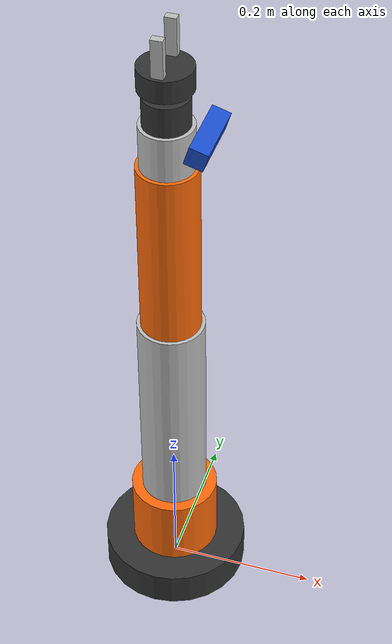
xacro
<?xml version="1.0"?>
<robot name="manipulator" xmlns:xacro="http://www.ros.org/wiki/xacro">

  <!-- Include sub-xacros relative to this file -->
  <xacro:include filename="common_macros.xacro" />
  <xacro:include filename="camera.xacro" />
  <xacro:include filename="gripper.xacro" />
  <xacro:include filename="ros2_control.xacro" />

  <!-- World / Base Footprint -->
  <link name="world"/>

  <joint name="world_to_base_joint" type="fixed">
    <parent link="world"/>
    <child link="base_link"/>
    <origin xyz="0 0 0" rpy="0 0 0"/>
  </joint>

  <!-- Base Link -->
  <link name="base_link">
    <visual>
      <origin xyz="0 0 0.025" rpy="0 0 0"/>
      <geometry>
        <cylinder radius="0.1" length="0.05"/>
      </geometry>
      <material name="dark_grey"/>
    </visual>
    <collision>
      <origin xyz="0 0 0.025" rpy="0 0 0"/>
      <geometry>
        <cylinder radius="0.1" length="0.05"/>
      </geometry>
    </collision>
    <xacro:cylinder_inertia m="3.0" r="0.1" h="0.05"/>
  </link>

  <!-- Joint 1: Base Yaw Rotation -->
  <joint name="joint_1" type="revolute">
    <parent link="base_link"/>
    <child link="link_1"/>
    <origin xyz="0 0 0.05" rpy="0 0 0"/>
    <axis xyz="0 0 1"/>
    <limit lower="${-pi}" upper="${pi}" effort="50.0" velocity="2.0"/>
    <dynamics damping="1.0" friction="0.5"/>
  </joint>

  <!-- Link 1 -->
  <link name="link_1">
    <visual>
      <origin xyz="0 0 0.05" rpy="0 0 0"/>
      <geometry>
        <cylinder radius="0.06" length="0.1"/>
      </geometry>
      <material name="orange"/>
    </visual>
    <collision>
      <origin xyz="0 0 0.05" rpy="0 0 0"/>
      <geometry>
        <cylinder radius="0.06" length="0.1"/>
      </geometry>
    </collision>
    <xacro:cylinder_inertia m="2.0" r="0.06" h="0.1"/>
  </link>

  <!-- Joint 2: Shoulder Pitch -->
  <joint name="joint_2" type="revolute">
    <parent link="link_1"/>
    <child link="link_2"/>
    <origin xyz="0 0 0.1" rpy="0 0 0"/>
    <axis xyz="0 1 0"/>
    <limit lower="${-pi/2}" upper="${pi/2}" effort="80.0" velocity="1.5"/>
    <dynamics damping="1.5" friction="0.5"/>
  </joint>

  <!-- Link 2: Upper Arm -->
  <link name="link_2">
    <visual>
      <origin xyz="0 0 0.15" rpy="0 0 0"/>
      <geometry>
        <cylinder radius="0.045" length="0.3"/>
      </geometry>
      <material name="silver"/>
    </visual>
    <collision>
      <origin xyz="0 0 0.15" rpy="0 0 0"/>
      <geometry>
        <cylinder radius="0.045" length="0.3"/>
      </geometry>
    </collision>
    <xacro:cylinder_inertia m="2.5" r="0.045" h="0.3"/>
  </link>

  <!-- Joint 3: Elbow Pitch -->
  <joint name="joint_3" type="revolute">
    <parent link="link_2"/>
    <child link="link_3"/>
    <origin xyz="0 0 0.3" rpy="0 0 0"/>
    <axis xyz="0 1 0"/>
    <limit lower="${-pi*0.75}" upper="${pi*0.75}" effort="60.0" velocity="1.5"/>
    <dynamics damping="1.0" friction="0.4"/>
  </joint>

  <!-- Link 3: Forearm -->
  <link name="link_3">
    <visual>
      <origin xyz="0 0 0.125" rpy="0 0 0"/>
      <geometry>
        <cylinder radius="0.04" length="0.25"/>
      </geometry>
      <material name="orange"/>
    </visual>
    <collision>
      <origin xyz="0 0 0.125" rpy="0 0 0"/>
      <geometry>
        <cylinder radius="0.04" length="0.25"/>
      </geometry>
    </collision>
    <xacro:cylinder_inertia m="1.8" r="0.04" h="0.25"/>
  </link>

  <!-- Joint 4: Wrist Pitch -->
  <joint name="joint_4" type="revolute">
    <parent link="link_3"/>
    <child link="link_4"/>
    <origin xyz="0 0 0.25" rpy="0 0 0"/>
    <axis xyz="0 1 0"/>
    <limit lower="${-pi*0.75}" upper="${pi*0.75}" effort="30.0" velocity="2.0"/>
    <dynamics damping="0.5" friction="0.2"/>
  </joint>

  <!-- Link 4: Wrist -->
  <link name="link_4">
    <visual>
      <origin xyz="0 0 0.03" rpy="0 0 0"/>
      <geometry>
        <cylinder radius="0.035" length="0.06"/>
      </geometry>
      <material name="silver"/>
    </visual>
    <collision>
      <origin xyz="0 0 0.03" rpy="0 0 0"/>
      <geometry>
        <cylinder radius="0.035" length="0.06"/>
      </geometry>
    </collision>
    <xacro:cylinder_inertia m="0.8" r="0.035" h="0.06"/>
  </link>

  <!-- Joint 5: Wrist Roll -->
  <joint name="joint_5" type="revolute">
    <parent link="link_4"/>
    <child link="wrist_roll_link"/>
    <origin xyz="0 0 0.06" rpy="0 0 0"/>
    <axis xyz="0 0 1"/>
    <limit lower="${-pi}" upper="${pi}" effort="20.0" velocity="2.5"/>
    <dynamics damping="0.3" friction="0.1"/>
  </joint>

  <link name="wrist_roll_link">
    <visual>
      <origin xyz="0 0 0.02" rpy="0 0 0"/>
      <geometry>
        <cylinder radius="0.03" length="0.04"/>
      </geometry>
      <material name="dark_grey"/>
    </visual>
    <collision>
      <origin xyz="0 0 0.02" rpy="0 0 0"/>
      <geometry>
        <cylinder radius="0.03" length="0.04"/>
      </geometry>
    </collision>
    <xacro:cylinder_inertia m="0.4" r="0.03" h="0.04"/>
  </link>

  <!-- Attach Camera to link_4 (or wrist) -->
  <xacro:camera_sensor parent_link="link_4"/>

  <!-- Attach Gripper to wrist_roll_link -->
  <xacro:gripper parent_link="wrist_roll_link"/>

  <xacro:arg name="controllers_yaml" default="" />

  <!-- Instantiate ros2_control configuration -->
  <xacro:manipulator_ros2_control name="ManipulatorHardwareInterface"/>

  <!-- Gazebo ros2_control plugin -->
  <gazebo>
    <plugin filename="gz_ros2_control-system" name="gz_ros2_control::GazeboSimROS2ControlPlugin">
      <xacro:if value="${'$(arg controllers_yaml)' != ''}">
        <parameters>$(arg controllers_yaml)</parameters>
      </xacro:if>
    </plugin>
  </gazebo>

</robot>

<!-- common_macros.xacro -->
<robot xmlns:xacro="http://www.ros.org/wiki/xacro">

  <!-- Materials -->
  <material name="dark_grey">
    <color rgba="0.2 0.2 0.2 1.0"/>
  </material>

  <material name="orange">
    <color rgba="1.0 0.42 0.04 1.0"/>
  </material>

  <material name="silver">
    <color rgba="0.75 0.75 0.75 1.0"/>
  </material>

  <material name="blue">
    <color rgba="0.1 0.3 0.8 1.0"/>
  </material>

  <!-- Inertia Helper Macros -->
  <xacro:macro name="cylinder_inertia" params="m r h">
    <inertial>
      <origin xyz="0 0 ${h/2}" rpy="0 0 0" />
      <mass value="${m}"/>
      <inertia ixx="${(m/12) * (3*r*r + h*h)}" ixy="0" ixz="0"
               iyy="${(m/12) * (3*r*r + h*h)}" iyz="0"
               izz="${(m/2) * (r*r)}"/>
    </inertial>
  </xacro:macro>

  <xacro:macro name="box_inertia" params="m w d h">
    <inertial>
      <origin xyz="0 0 ${h/2}" rpy="0 0 0" />
      <mass value="${m}"/>
      <inertia ixx="${(m/12) * (d*d + h*h)}" ixy="0" ixz="0"
               iyy="${(m/12) * (w*w + h*h)}" iyz="0"
               izz="${(m/12) * (w*w + d*d)}"/>
    </inertial>
  </xacro:macro>

</robot>

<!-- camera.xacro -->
<robot xmlns:xacro="http://www.ros.org/wiki/xacro">

  <xacro:macro name="camera_sensor" params="parent_link">
    <!-- Camera mount joint -->
    <joint name="camera_joint" type="fixed">
      <parent link="${parent_link}"/>
      <child link="camera_link"/>
      <origin xyz="0.05 0 0.05" rpy="0 0.3 0"/>
    </joint>

    <!-- Camera physical body -->
    <link name="camera_link">
      <visual>
        <origin xyz="0 0 0" rpy="0 0 0"/>
        <geometry>
          <box size="0.025 0.09 0.025"/>
        </geometry>
        <material name="blue"/>
      </visual>
      <collision>
        <origin xyz="0 0 0" rpy="0 0 0"/>
        <geometry>
          <box size="0.025 0.09 0.025"/>
        </geometry>
      </collision>
      <inertial>
        <mass value="0.05"/>
        <origin xyz="0 0 0" rpy="0 0 0"/>
        <inertia ixx="0.0001" ixy="0" ixz="0" iyy="0.0001" iyz="0" izz="0.0001"/>
      </inertial>
    </link>

    <!-- Optical frame joint for standard computer vision axis convention -->
    <joint name="camera_optical_joint" type="fixed">
      <parent link="camera_link"/>
      <child link="camera_link_optical"/>
      <origin xyz="0 0 0" rpy="${-pi/2} 0 ${-pi/2}"/>
    </joint>
    <link name="camera_link_optical"/>

    <!-- Gazebo sensor plugin definition -->
    <gazebo reference="camera_link">
      <sensor name="rgbd_camera" type="rgbd_camera">
        <camera>
          <horizontal_fov>1.047</horizontal_fov>
          <image>
            <width>640</width>
            <height>480</height>
            <format>R8G8B8</format>
          </image>
          <clip>
            <near>0.05</near>
            <far>3.0</far>
          </clip>
          <optical_frame_id>camera_link_optical</optical_frame_id>
        </camera>
        <always_on>1</always_on>
        <update_rate>30</update_rate>
        <visualize>true</visualize>
        <topic>camera</topic>
      </sensor>
    </gazebo>
  </xacro:macro>

</robot>

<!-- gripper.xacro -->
<robot xmlns:xacro="http://www.ros.org/wiki/xacro">

  <xacro:macro name="gripper" params="parent_link">
    <!-- Gripper Base Joint -->
    <joint name="gripper_base_joint" type="fixed">
      <parent link="${parent_link}"/>
      <child link="gripper_base_link"/>
      <origin xyz="0 0 0.05" rpy="0 0 0"/>
    </joint>

    <!-- Gripper Base Link -->
    <link name="gripper_base_link">
      <visual>
        <origin xyz="0 0 0.015" rpy="0 0 0"/>
        <geometry>
          <cylinder radius="0.035" length="0.03"/>
        </geometry>
        <material name="dark_grey"/>
      </visual>
      <collision>
        <origin xyz="0 0 0.015" rpy="0 0 0"/>
        <geometry>
          <cylinder radius="0.035" length="0.03"/>
        </geometry>
      </collision>
      <xacro:cylinder_inertia m="0.2" r="0.035" h="0.03"/>
    </link>

    <!-- Left Finger Joint (Prismatic) -->
    <joint name="left_finger_joint" type="prismatic">
      <parent link="gripper_base_link"/>
      <child link="left_finger_link"/>
      <origin xyz="0 0.025 0.03" rpy="0 0 0"/>
      <axis xyz="0 1 0"/>
      <limit lower="0.0" upper="0.03" effort="20.0" velocity="0.05"/>
      <dynamics damping="1.0" friction="0.5"/>
    </joint>

    <link name="left_finger_link">
      <visual>
        <origin xyz="0 0 0.025" rpy="0 0 0"/>
        <geometry>
          <box size="0.015 0.01 0.05"/>
        </geometry>
        <material name="silver"/>
      </visual>
      <collision>
        <origin xyz="0 0 0.025" rpy="0 0 0"/>
        <geometry>
          <box size="0.015 0.01 0.05"/>
        </geometry>
      </collision>
      <xacro:box_inertia m="0.05" w="0.015" d="0.01" h="0.05"/>
    </link>

    <!-- Right Finger Joint (Prismatic) -->
    <joint name="right_finger_joint" type="prismatic">
      <parent link="gripper_base_link"/>
      <child link="right_finger_link"/>
      <origin xyz="0 -0.025 0.03" rpy="0 0 0"/>
      <axis xyz="0 -1 0"/>
      <limit lower="0.0" upper="0.03" effort="20.0" velocity="0.05"/>
      <dynamics damping="1.0" friction="0.5"/>
    </joint>

    <link name="right_finger_link">
      <visual>
        <origin xyz="0 0 0.025" rpy="0 0 0"/>
        <geometry>
          <box size="0.015 0.01 0.05"/>
        </geometry>
        <material name="silver"/>
      </visual>
      <collision>
        <origin xyz="0 0 0.025" rpy="0 0 0"/>
        <geometry>
          <box size="0.015 0.01 0.05"/>
        </geometry>
      </collision>
      <xacro:box_inertia m="0.05" w="0.015" d="0.01" h="0.05"/>
    </link>

    <!-- Tool Center Point (TCP) / Grasp frame -->
    <joint name="tcp_joint" type="fixed">
      <parent link="gripper_base_link"/>
      <child link="tcp_link"/>
      <origin xyz="0 0 0.06" rpy="0 0 0"/>
    </joint>
    <link name="tcp_link"/>

  </xacro:macro>

</robot>
